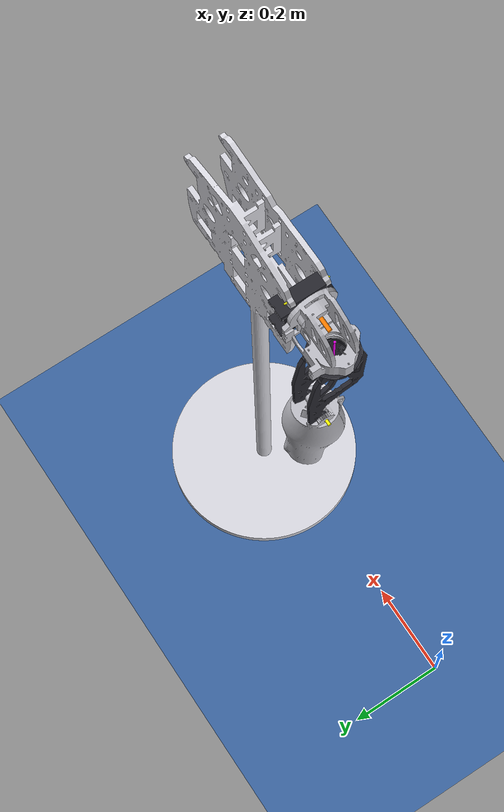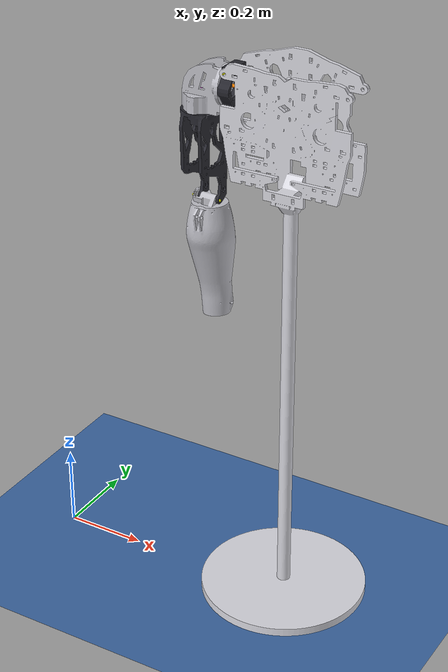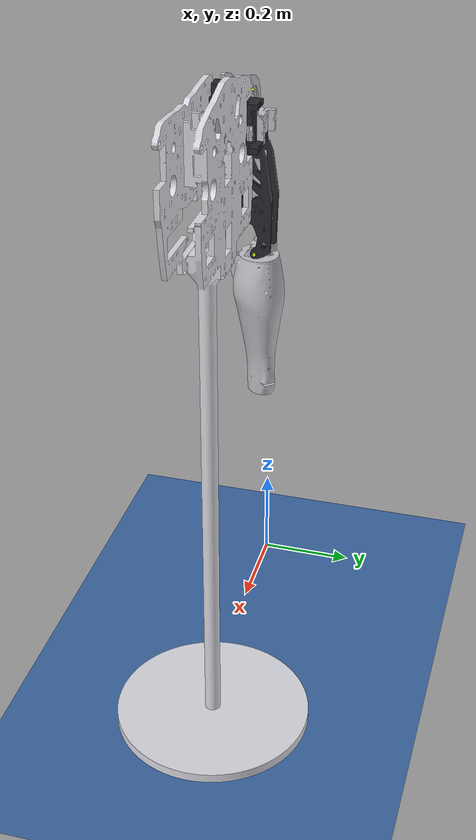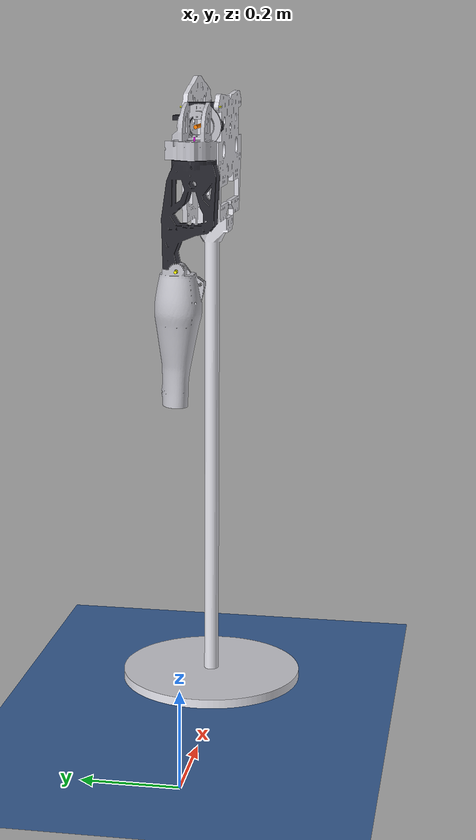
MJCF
<mujoco model="Manipulador_Robotico_SemiHumanoide">

    <compiler
        angle="degree"
        meshdir="assets"
        autolimits="true"/>

    <option
        timestep="0.002"
        gravity="0 0 -9.81"
        integrator="implicitfast"
        iterations="30"/>

    <asset>

        <texture
            name="groundplane"
            type="2d"
            builtin="checker"
            rgb1="0.18 0.33 0.55"
            rgb2="0.28 0.46 0.70"
            width="512"
            height="512"/>

        <material
            name="groundplane"
            texture="groundplane"
            texrepeat="25 25"
            reflectance="0.25"/>

        <!-- Bíceps: colisión -->
        <mesh
            name="bicep_collision_mesh"
            file="bicep_colision.stl"
            scale="0.001 0.001 0.001"/>

        <!-- Bíceps: visual -->
        <mesh
            name="bicep_visual_mesh"
            file="bicep_visual.stl"
            scale="0.001 0.001 0.001"/>

        <!-- Antebrazo: colisión -->
        <mesh
            name="antebrazo_collision_mesh"
            file="Antebrazo_colision.stl"
            scale="0.001 0.001 0.001"/>

        <!-- Antebrazo: visual -->
        <mesh
            name="antebrazo_visual_mesh"
            file="Antebrazo_visual.stl"
            scale="0.001 0.001 0.001"/>

        <!-- Torso: colisión -->
        <mesh
            name="torso_collision_mesh"
            file="Torso_colision.stl"
            scale="0.001 0.001 0.001"/>

        <!-- Torso: visual -->
        <mesh
            name="torso_visual_mesh"
            file="Torso_visual.stl"
            scale="0.001 0.001 0.001"/>

        <!-- Hombro 1: colisión -->
        <mesh
            name="hombro_1_collision_mesh"
            file="Hombro_1_colision.stl"
            scale="0.001 0.001 0.001"/>

        <!-- Hombro 1: visual -->
        <mesh
            name="hombro_1_visual_mesh"
            file="Hombro_1_visual.stl"
            scale="0.001 0.001 0.001"/>

        <!-- Hombro 2: colisión -->
        <mesh
            name="hombro_2_collision_mesh"
            file="Hombro_2_colision.stl"
            scale="0.001 0.001 0.001"/>

        <!-- Hombro 2: visual -->
        <mesh
            name="hombro_2_visual_mesh"
            file="Hombro_2_visual.stl"
            scale="0.001 0.001 0.001"/>

    </asset>

    <worldbody>
        <!-- Escenario -->
        <light
            pos="0 0 4"
            dir="0 0 -1"
            directional="true"
            diffuse="0.6 0.6 0.6"
            specular="0.15 0.15 0.15"/>

        <!-- Piso fijo -->
        <geom
            name="piso"
            type="plane"
            size="5 5 0.1"
            material="groundplane"/>

        <!-- ================== Torso ================== -->
        <body
            name="torso"
            pos="0.30 0 0.25"
            euler="0 0 0">

            <!-- Malla visual del torso -->
            <geom
                name="torso_visual"
                type="mesh"
                mesh="torso_visual_mesh"
                pos="0 0 0.8782"
                euler="0 180 0"
                contype="0"
                conaffinity="0"
                density="0"
                rgba="0.85 0.85 0.88 1"/>

            <!-- Malla de colisión del torso -->
            <geom
                name="torso_collision"
                type="mesh"
                mesh="torso_collision_mesh"
                pos="0 0 0.8782"
                euler="0 180 0"
                rgba="0.55 0.55 0.30 0"/>

            <!-- ======== Hombro 1 ======== -->
            <body
                name="hombro_1"
                pos="0.1439 0.063 1.05485">

                <joint
                    name="joint_hombro_1"
                    type="hinge"
                    pos="0.0118 -0.024 -0.0094"
                    axis="0 1 0"
                    range="0 90"
                    damping="2"
                    armature="0.005"/>

                <!-- Marcador del eje real del hombro -->
                <site
                    name="eje_hombro_1"
                    type="cylinder"
                    pos="0.0118 -0.024 -0.0094"
                    euler="90 0 0"
                    size="0.0015 0.043"
                    rgba="1 1 0 1"/>

                <!-- STL de colisión del hombro -->
                <geom
                    name="hombro_1_collision"
                    type="mesh"
                    mesh="hombro_1_collision_mesh"
                    pos="0 0 0"
                    euler="90 0 270"
                    mass="0.20"
                    contype="0"
                    conaffinity="0"
                    rgba="0.15 0.65 0.25 0"/>

                    <!-- STL visual del hombro -->
                <geom
                    name="hombro_1_visual"
                    type="mesh"
                    mesh="hombro_1_visual_mesh"
                    pos="0 0 0"
                    euler="90 0 270"
                    contype="0"
                    conaffinity="0"
                    density="0"
                    rgba="0.15 0.15 0.18 1"/>

                <!-- ======== Hombro 2 ======== -->
                <body
                    name="hombro_2"
                    pos="-0.0007 -0.034 -0.002">

                    <joint
                        name="joint_hombro_2"
                        type="hinge"
                        pos="-0.01 0.0091 -0.045"
                        axis="1 0 0"
                        range="-180 30"
                        damping="2"
                        armature="0.005"/>

                    <!-- Marcador visual del segundo eje -->
                    <site
                        name="eje_hombro_2"
                        type="cylinder"
                        pos="-0.01 0.0091 -0.045"
                        euler="0 90 0"
                        size="0.004 0.043"
                        rgba="1 0.5 0 1"/>

                    <!-- Visual: esta se acomoda si aparece desfasada -->
                    <geom
                        name="hombro_2_visual"
                        type="mesh"
                        mesh="hombro_2_visual_mesh"
                        pos="0 0 0"
                        euler="270 0 90"
                        contype="0"
                        conaffinity="0"
                        density="0"
                        rgba="0.75 0.75 0.78 1"/>

                    <!-- STL de colisión del hombro 2 -->
                    <geom
                        name="hombro_2_collision"
                        type="mesh"
                        mesh="hombro_2_collision_mesh"
                        pos="0 0 0"
                        euler="270 0 90"
                        mass="0.20"
                        contype="1"
                        conaffinity="1"
                        rgba="0.2 0.4 0.9 0"/>

                    <!-- ================== Bíceps ================== -->
                    <body
                        name="bicep"
                        pos="-0.0513 -0.0369 -0.1095">

                        <!-- Rotación del brazo sobre el eje Z -->
                        <joint
                            name="joint_bicep_z"
                            type="hinge"
                            pos="-0.015 0.046 0.005"
                            axis="0 0 1"
                            range="-90 90"
                            damping="2"
                            armature="0.005"/>

                        <!-- Marcador del eje Z -0.015 -->
                        <site
                            name="eje_bicep_z"
                            type="cylinder"
                            pos="-0.015 0.046 0.005"
                            size="0.002 0.04"
                            rgba="1 0 1 1"/>

                        <!-- Malla visual del bíceps -->
                        <geom
                            name="bicep_visual"
                            type="mesh"
                            mesh="bicep_visual_mesh"
                            pos="0 0 0"
                            euler="270 270 0"
                            contype="0"
                            conaffinity="0"
                            density="0"
                            rgba="0.15 0.15 0.18 1"/>

                        <!-- Malla de colisión del bíceps -->
                        <geom
                            name="bicep_collision"
                            type="mesh"
                            mesh="bicep_collision_mesh"
                            pos="0 0 0"
                            euler="270 270 0"
                            mass="0.5"
                            contype="0"
                            conaffinity="0"
                            rgba="0.8 0.2 0.2 0"/>

                        <!-- ======= Antebrazo ======= -->
                        <body
                            name="antebrazo"
                            pos="-0.0327 0.10227 -0.2384">

                            <joint
                                name="joint_motor"
                                type="hinge"
                                pos="0.01 -0.0244 0.0136"
                                axis="-1 0 0"
                                range="0 90"
                                damping="2"
                                armature="0.005"/>

                            <site
                                name="eje_brazo"
                                type="cylinder"
                                pos="0.01 -0.0244 0.0136"
                                euler="0 90 0"
                                size="0.003 0.036"
                                rgba="1 1 0 1"/>

                            <!-- Malla visual del antebrazo -->
                            <geom
                                name="antebrazo_visual"
                                type="mesh"
                                mesh="antebrazo_visual_mesh"
                                pos="0 0 0"
                                euler="270 140 0"
                                contype="0"
                                conaffinity="0"
                                density="0"
                                rgba="0.75 0.75 0.78 1"/>

                            <geom
                                name="antebrazo_collision"
                                type="mesh"
                                mesh="antebrazo_collision_mesh"
                                pos="0 0 0"
                                euler="270 140 0"
                                contype="1"
                                conaffinity="1"
                                mass="0.3"
                                rgba="0.2 0.4 0.9 0"/>

                        </body>

                    </body>
                </body>

            </body>

        </body>

    </worldbody>

    <actuator>

        <!-- Motor del hombro -->
        <position
            name="motor_hombro_1"
            joint="joint_hombro_1"
            gear="57.2957795"
            kp="0.0061"
            ctrlrange="0 90"
            forcerange="-0.0873 0.0873"/>

        <position
            name="motor_hombro_2"
            joint="joint_hombro_2"
            gear="57.2957795"
            kp="0.0061"
            ctrlrange="-180 30"
            forcerange="-0.0873 0.0873"/>

        <position
            name="motor_bicep_z"
            joint="joint_bicep_z"
            gear="57.2957795"
            kp="0.0061"
            ctrlrange="-90 90"
            forcerange="-0.0873 0.0873"/>

        <!-- Motor actual del antebrazo -->
        <position
            name="motor_brazo"
            joint="joint_motor"
            gear="57.2957795"
            kp="0.0061"
            ctrlrange="0 90"
            forcerange="-0.0873 0.0873"/>

    </actuator>

</mujoco>
